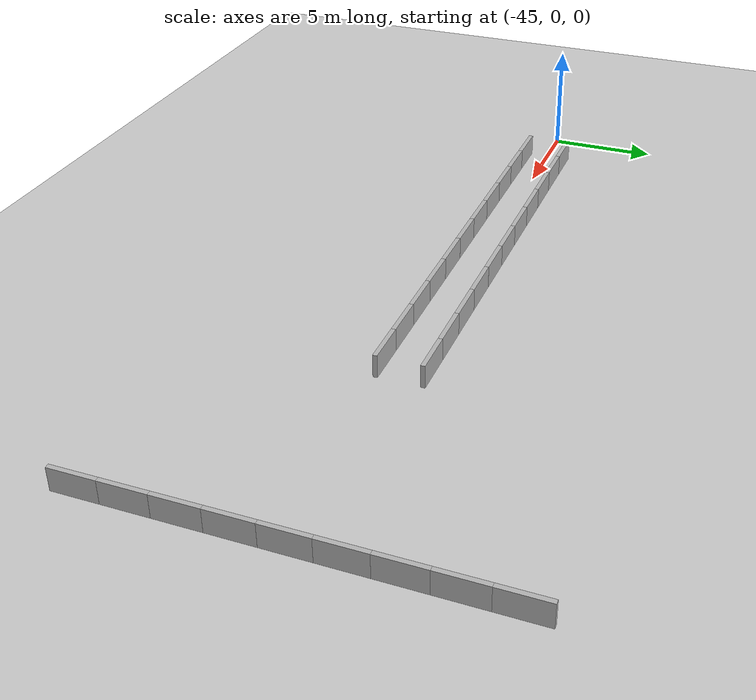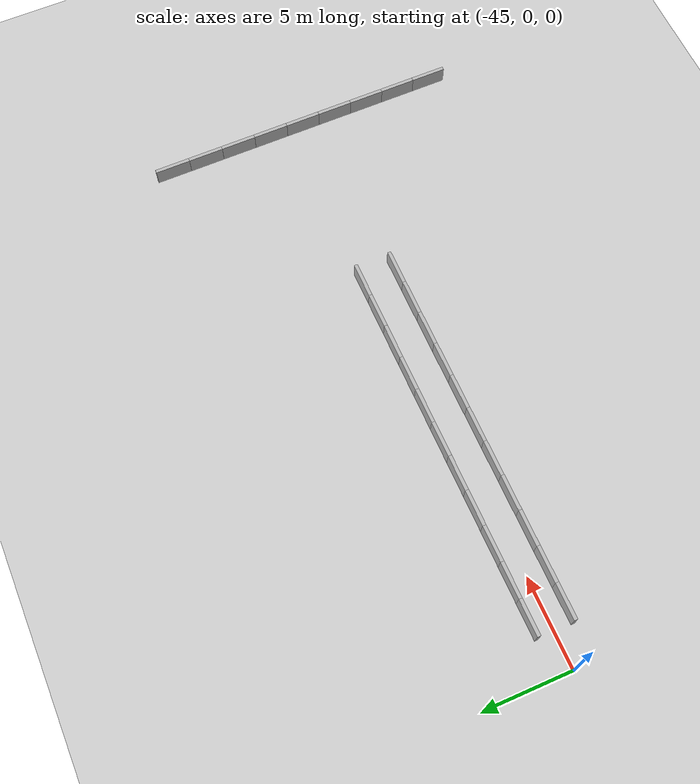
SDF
<sdf version="1.6">
 <world name="default">
  <model name="ground_plane">
   <static>1</static>
   <link name="link">
    <collision name="collision">
     <geometry><plane><normal>0 0 1</normal><size>100 100</size></plane></geometry>
     <surface>
      <contact><collide_bitmask>65535</collide_bitmask></contact>
      <friction><ode><mu>100</mu><mu2>50</mu2></ode></friction>
     </surface>
    </collision>
    <visual name="visual">
     <cast_shadows>0</cast_shadows>
     <geometry><plane><normal>0 0 1</normal><size>100 100</size></plane></geometry>
     <material>
      <script><uri>file://media/materials/scripts/gazebo.material</uri><name>Gazebo/Grey</name></script>
     </material>
    </visual>
   </link>
  </model>
  <model name="Color Tutorial Model_clone_4_clone_clone_3_clone_2_clone_1_clone_1_clone_1">
   <static>1</static>
   <link name="grating">
    <collision name="body_collision"><geometry><box><size>2 0.2 2</size></box></geometry></collision>
    <visual name="body_visual">
     <geometry><box><size>2 0.2 2</size></box></geometry>
     <material>
      <script>
       <uri>/home/neuro/.gazebo/models/grating_wall/materials/scripts/</uri>
       <uri>/home/neuro/.gazebo/models/grating_wall/materials/scripts/</uri>
       <name>RepeatedTexture</name>
      </script>
     </material>
    </visual>
   </link>
   <pose>-22 -1 0 0 0 -3.14159</pose>
  </model>
  <model name="Color Tutorial Model_clone_4_clone_clone_3_clone_2_clone_1_clone_1_clone_2">
   <static>1</static>
   <link name="grating">
    <collision name="body_collision"><geometry><box><size>2 0.2 2</size></box></geometry></collision>
    <visual name="body_visual">
     <geometry><box><size>2 0.2 2</size></box></geometry>
     <material>
      <script>
       <uri>/home/neuro/.gazebo/models/grating_wall/materials/scripts/</uri>
       <uri>/home/neuro/.gazebo/models/grating_wall/materials/scripts/</uri>
       <name>RepeatedTexture</name>
      </script>
     </material>
    </visual>
   </link>
   <pose>-22 1 0 0 0 -3.14159</pose>
  </model>
  <model name="Color Tutorial Model_clone_4_clone_clone_3_clone_2_clone_1_clone_1_clone_1_clone">
   <static>1</static>
   <link name="grating">
    <collision name="body_collision"><geometry><box><size>2 0.2 2</size></box></geometry></collision>
    <visual name="body_visual">
     <geometry><box><size>2 0.2 2</size></box></geometry>
     <material>
      <script>
       <uri>/home/neuro/.gazebo/models/grating_wall/materials/scripts/</uri>
       <uri>/home/neuro/.gazebo/models/grating_wall/materials/scripts/</uri>
       <name>RepeatedTexture</name>
      </script>
     </material>
    </visual>
   </link>
   <pose>-24 -1 0 0 0 -3.14159</pose>
  </model>
  <model name="Color Tutorial Model_clone_4_clone_clone_3_clone_2_clone_1_clone_1_clone_1_clone_0">
   <static>1</static>
   <link name="grating">
    <collision name="body_collision"><geometry><box><size>2 0.2 2</size></box></geometry></collision>
    <visual name="body_visual">
     <geometry><box><size>2 0.2 2</size></box></geometry>
     <material>
      <script>
       <uri>/home/neuro/.gazebo/models/grating_wall/materials/scripts/</uri>
       <uri>/home/neuro/.gazebo/models/grating_wall/materials/scripts/</uri>
       <name>RepeatedTexture</name>
      </script>
     </material>
    </visual>
   </link>
   <pose>-24 1 0 0 0 -3.14159</pose>
  </model>
  <model name="Color Tutorial Model_clone_4_clone_clone_3_clone_2_clone_1_clone_1_clone_1_clone_1">
   <static>1</static>
   <link name="grating">
    <collision name="body_collision"><geometry><box><size>2 0.2 2</size></box></geometry></collision>
    <visual name="body_visual">
     <geometry><box><size>2 0.2 2</size></box></geometry>
     <material>
      <script>
       <uri>/home/neuro/.gazebo/models/grating_wall/materials/scripts/</uri>
       <uri>/home/neuro/.gazebo/models/grating_wall/materials/scripts/</uri>
       <name>RepeatedTexture</name>
      </script>
     </material>
    </visual>
   </link>
   <pose>-26 -1 0 0 0 -3.14159</pose>
  </model>
  <model name="Color Tutorial Model_clone_4_clone_clone_3_clone_2_clone_1_clone_1_clone_1_clone_2">
   <static>1</static>
   <link name="grating">
    <collision name="body_collision"><geometry><box><size>2 0.2 2</size></box></geometry></collision>
    <visual name="body_visual">
     <geometry><box><size>2 0.2 2</size></box></geometry>
     <material>
      <script>
       <uri>/home/neuro/.gazebo/models/grating_wall/materials/scripts/</uri>
       <uri>/home/neuro/.gazebo/models/grating_wall/materials/scripts/</uri>
       <name>RepeatedTexture</name>
      </script>
     </material>
    </visual>
   </link>
   <pose>-26 1 0 0 0 -3.14159</pose>
  </model>
  <model name="Color Tutorial Model_clone_4_clone_clone_3_clone_2_clone_1_clone_1_clone_1_clone_1_clone">
   <static>1</static>
   <link name="grating">
    <collision name="body_collision"><geometry><box><size>2 0.2 2</size></box></geometry></collision>
    <visual name="body_visual">
     <geometry><box><size>2 0.2 2</size></box></geometry>
     <material>
      <script>
       <uri>/home/neuro/.gazebo/models/grating_wall/materials/scripts/</uri>
       <uri>/home/neuro/.gazebo/models/grating_wall/materials/scripts/</uri>
       <name>RepeatedTexture</name>
      </script>
     </material>
    </visual>
   </link>
   <pose>-28 -1 0 0 0 -3.14159</pose>
  </model>
  <model name="Color Tutorial Model_clone_4_clone_clone_3_clone_2_clone_1_clone_1_clone_1_clone_1_clone_0">
   <static>1</static>
   <link name="grating">
    <collision name="body_collision"><geometry><box><size>2 0.2 2</size></box></geometry></collision>
    <visual name="body_visual">
     <geometry><box><size>2 0.2 2</size></box></geometry>
     <material>
      <script>
       <uri>/home/neuro/.gazebo/models/grating_wall/materials/scripts/</uri>
       <uri>/home/neuro/.gazebo/models/grating_wall/materials/scripts/</uri>
       <name>RepeatedTexture</name>
      </script>
     </material>
    </visual>
   </link>
   <pose>-28 1 0 0 0 -3.14159</pose>
  </model>
  <model name="Color Tutorial Model_clone_4_clone_clone_3_clone_2_clone_1_clone_1_clone_1_clone_1_clone_1">
   <static>1</static>
   <link name="grating">
    <collision name="body_collision"><geometry><box><size>2 0.2 2</size></box></geometry></collision>
    <visual name="body_visual">
     <geometry><box><size>2 0.2 2</size></box></geometry>
     <material>
      <script>
       <uri>/home/neuro/.gazebo/models/grating_wall/materials/scripts/</uri>
       <uri>/home/neuro/.gazebo/models/grating_wall/materials/scripts/</uri>
       <name>RepeatedTexture</name>
      </script>
     </material>
    </visual>
   </link>
   <pose>-30 1 0 0 0 -3.14159</pose>
  </model>
  <model name="Color Tutorial Model_clone_4_clone_clone_3_clone_2_clone_1_clone_1_clone_1_clone_1_clone_2">
   <static>1</static>
   <link name="grating">
    <collision name="body_collision"><geometry><box><size>2 0.2 2</size></box></geometry></collision>
    <visual name="body_visual">
     <geometry><box><size>2 0.2 2</size></box></geometry>
     <material>
      <script>
       <uri>/home/neuro/.gazebo/models/grating_wall/materials/scripts/</uri>
       <uri>/home/neuro/.gazebo/models/grating_wall/materials/scripts/</uri>
       <name>RepeatedTexture</name>
      </script>
     </material>
    </visual>
   </link>
   <pose>-30 -1 0 0 0 -3.14159</pose>
  </model>
  <model name="Color Tutorial Model_clone_4_clone_clone_3_clone_2_clone_1_clone_1_clone_1_clone_1_clone_2_clone">
   <static>1</static>
   <link name="grating">
    <collision name="body_collision"><geometry><box><size>2 0.2 2</size></box></geometry></collision>
    <visual name="body_visual">
     <geometry><box><size>2 0.2 2</size></box></geometry>
     <material>
      <script>
       <uri>/home/neuro/.gazebo/models/grating_wall/materials/scripts/</uri>
       <uri>/home/neuro/.gazebo/models/grating_wall/materials/scripts/</uri>
       <name>RepeatedTexture</name>
      </script>
     </material>
    </visual>
   </link>
   <pose>-32 -1 0 0 0 -3.14159</pose>
  </model>
  <model name="Color Tutorial Model_clone_4_clone_clone_3_clone_2_clone_1_clone_1_clone_1_clone_1_clone_2_clone_0">
   <static>1</static>
   <link name="grating">
    <collision name="body_collision"><geometry><box><size>2 0.2 2</size></box></geometry></collision>
    <visual name="body_visual">
     <geometry><box><size>2 0.2 2</size></box></geometry>
     <material>
      <script>
       <uri>/home/neuro/.gazebo/models/grating_wall/materials/scripts/</uri>
       <uri>/home/neuro/.gazebo/models/grating_wall/materials/scripts/</uri>
       <name>RepeatedTexture</name>
      </script>
     </material>
    </visual>
   </link>
   <pose>-32 1 0 0 0 -3.14159</pose>
  </model>
  <model name="Color Tutorial Model_clone_4_clone_clone_3_clone_2_clone_1_clone_1_clone_1_clone_1_clone_2_clone_1">
   <static>1</static>
   <link name="grating">
    <collision name="body_collision"><geometry><box><size>2 0.2 2</size></box></geometry></collision>
    <visual name="body_visual">
     <geometry><box><size>2 0.2 2</size></box></geometry>
     <material>
      <script>
       <uri>/home/neuro/.gazebo/models/grating_wall/materials/scripts/</uri>
       <uri>/home/neuro/.gazebo/models/grating_wall/materials/scripts/</uri>
       <name>RepeatedTexture</name>
      </script>
     </material>
    </visual>
   </link>
   <pose>-34 -1 0 0 0 -3.14159</pose>
  </model>
  <model name="Color Tutorial Model_clone_4_clone_clone_3_clone_2_clone_1_clone_1_clone_1_clone_1_clone_2_clone_2">
   <static>1</static>
   <link name="grating">
    <collision name="body_collision"><geometry><box><size>2 0.2 2</size></box></geometry></collision>
    <visual name="body_visual">
     <geometry><box><size>2 0.2 2</size></box></geometry>
     <material>
      <script>
       <uri>/home/neuro/.gazebo/models/grating_wall/materials/scripts/</uri>
       <uri>/home/neuro/.gazebo/models/grating_wall/materials/scripts/</uri>
       <name>RepeatedTexture</name>
      </script>
     </material>
    </visual>
   </link>
   <pose>-34 1 0 0 0 -3.14159</pose>
  </model>
  <model name="Color Tutorial Model_clone_4_clone_clone_3_clone_2_clone_1_clone_1_clone_1_clone_1_clone_2_clone_1_clone">
   <static>1</static>
   <link name="grating">
    <collision name="body_collision"><geometry><box><size>2 0.2 2</size></box></geometry></collision>
    <visual name="body_visual">
     <geometry><box><size>2 0.2 2</size></box></geometry>
     <material>
      <script>
       <uri>/home/neuro/.gazebo/models/grating_wall/materials/scripts/</uri>
       <uri>/home/neuro/.gazebo/models/grating_wall/materials/scripts/</uri>
       <name>RepeatedTexture</name>
      </script>
     </material>
    </visual>
   </link>
   <pose>-36 -1 0 0 0 -3.14159</pose>
  </model>
  <model name="Color Tutorial Model_clone_4_clone_clone_3_clone_2_clone_1_clone_1_clone_1_clone_1_clone_2_clone_1_clone_0">
   <static>1</static>
   <link name="grating">
    <collision name="body_collision"><geometry><box><size>2 0.2 2</size></box></geometry></collision>
    <visual name="body_visual">
     <geometry><box><size>2 0.2 2</size></box></geometry>
     <material>
      <script>
       <uri>/home/neuro/.gazebo/models/grating_wall/materials/scripts/</uri>
       <uri>/home/neuro/.gazebo/models/grating_wall/materials/scripts/</uri>
       <name>RepeatedTexture</name>
      </script>
     </material>
    </visual>
   </link>
   <pose>-36 1 0 0 0 -3.14159</pose>
  </model>
  <model name="Color Tutorial Model_clone_4_clone_clone_3_clone_2_clone_1_clone_1_clone_1_clone_1_clone_2_clone_1_clone_1">
   <static>1</static>
   <link name="grating">
    <collision name="body_collision"><geometry><box><size>2 0.2 2</size></box></geometry></collision>
    <visual name="body_visual">
     <geometry><box><size>2 0.2 2</size></box></geometry>
     <material>
      <script>
       <uri>/home/neuro/.gazebo/models/grating_wall/materials/scripts/</uri>
       <uri>/home/neuro/.gazebo/models/grating_wall/materials/scripts/</uri>
       <name>RepeatedTexture</name>
      </script>
     </material>
    </visual>
   </link>
   <pose>-38 -1 0 0 0 -3.14159</pose>
  </model>
  <model name="Color Tutorial Model_clone_4_clone_clone_3_clone_2_clone_1_clone_1_clone_1_clone_1_clone_2_clone_1_clone_2">
   <static>1</static>
   <link name="grating">
    <collision name="body_collision"><geometry><box><size>2 0.2 2</size></box></geometry></collision>
    <visual name="body_visual">
     <geometry><box><size>2 0.2 2</size></box></geometry>
     <material>
      <script>
       <uri>/home/neuro/.gazebo/models/grating_wall/materials/scripts/</uri>
       <uri>/home/neuro/.gazebo/models/grating_wall/materials/scripts/</uri>
       <name>RepeatedTexture</name>
      </script>
     </material>
    </visual>
   </link>
   <pose>-38 1 0 0 0 -3.14159</pose>
  </model>
  <model name="Color Tutorial Model_clone_4_clone_clone_3_clone_2_clone_1_clone_1_clone_1_clone_1_clone_2_clone_1_clone_clone">
   <static>1</static>
   <link name="grating">
    <collision name="body_collision"><geometry><box><size>2 0.2 2</size></box></geometry></collision>
    <visual name="body_visual">
     <geometry><box><size>2 0.2 2</size></box></geometry>
     <material>
      <script>
       <uri>/home/neuro/.gazebo/models/grating_wall/materials/scripts/</uri>
       <uri>/home/neuro/.gazebo/models/grating_wall/materials/scripts/</uri>
       <name>RepeatedTexture</name>
      </script>
     </material>
    </visual>
   </link>
   <pose>-40 -1 0 0 0 -3.14159</pose>
  </model>
  <model name="Color Tutorial Model_clone_4_clone_clone_3_clone_2_clone_1_clone_1_clone_1_clone_1_clone_2_clone_1_clone_clone_0">
   <static>1</static>
   <link name="grating">
    <collision name="body_collision"><geometry><box><size>2 0.2 2</size></box></geometry></collision>
    <visual name="body_visual">
     <geometry><box><size>2 0.2 2</size></box></geometry>
     <material>
      <script>
       <uri>/home/neuro/.gazebo/models/grating_wall/materials/scripts/</uri>
       <uri>/home/neuro/.gazebo/models/grating_wall/materials/scripts/</uri>
       <name>RepeatedTexture</name>
      </script>
     </material>
    </visual>
   </link>
   <pose>-40 1 0 0 0 -3.14159</pose>
  </model>
  <model name="Color Tutorial Model_clone_4_clone_clone_3_clone_2_clone_1_clone_1_clone_1_clone_1_clone_2_clone_1_clone_clone_1">
   <static>1</static>
   <link name="grating">
    <collision name="body_collision"><geometry><box><size>2 0.2 2</size></box></geometry></collision>
    <visual name="body_visual">
     <geometry><box><size>2 0.2 2</size></box></geometry>
     <material>
      <script>
       <uri>/home/neuro/.gazebo/models/grating_wall/materials/scripts/</uri>
       <uri>/home/neuro/.gazebo/models/grating_wall/materials/scripts/</uri>
       <name>RepeatedTexture</name>
      </script>
     </material>
    </visual>
   </link>
   <pose>-42 -1 0 0 0 -3.14159</pose>
  </model>
  <model name="Color Tutorial Model_clone_4_clone_clone_3_clone_2_clone_1_clone_1_clone_1_clone_1_clone_2_clone_1_clone_clone_2">
   <static>1</static>
   <link name="grating">
    <collision name="body_collision"><geometry><box><size>2 0.2 2</size></box></geometry></collision>
    <visual name="body_visual">
     <geometry><box><size>2 0.2 2</size></box></geometry>
     <material>
      <script>
       <uri>/home/neuro/.gazebo/models/grating_wall/materials/scripts/</uri>
       <uri>/home/neuro/.gazebo/models/grating_wall/materials/scripts/</uri>
       <name>RepeatedTexture</name>
      </script>
     </material>
    </visual>
   </link>
   <pose>-42 1 0 0 0 -3.14159</pose>
  </model>
  <model name="Color Tutorial Model_clone_4_clone_clone_clone_0_clone">
   <static>1</static>
   <link name="grating">
    <collision name="body_collision"><geometry><box><size>2 0.2 2</size></box></geometry></collision>
    <visual name="body_visual">
     <geometry><box><size>2 0.2 2</size></box></geometry>
     <material>
      <script>
       <uri>/home/neuro/.gazebo/models/grating_wall/materials/scripts/</uri>
       <uri>/home/neuro/.gazebo/models/grating_wall/materials/scripts/</uri>
       <name>RepeatedTexture</name>
      </script>
     </material>
    </visual>
   </link>
   <pose>-11 -4 0 0 -0 1.5708</pose>
  </model>
  <model name="Color Tutorial Model_clone_4_clone_clone_clone_0_clone_0">
   <static>1</static>
   <link name="grating">
    <collision name="body_collision"><geometry><box><size>2 0.2 2</size></box></geometry></collision>
    <visual name="body_visual">
     <geometry><box><size>2 0.2 2</size></box></geometry>
     <material>
      <script>
       <uri>/home/neuro/.gazebo/models/grating_wall/materials/scripts/</uri>
       <uri>/home/neuro/.gazebo/models/grating_wall/materials/scripts/</uri>
       <name>RepeatedTexture</name>
      </script>
     </material>
    </visual>
   </link>
   <pose>-11 -2 0 0 -0 1.5708</pose>
  </model>
  <model name="Color Tutorial Model_clone_4_clone_clone_clone_0_clone_1">
   <static>1</static>
   <link name="grating">
    <collision name="body_collision"><geometry><box><size>2 0.2 2</size></box></geometry></collision>
    <visual name="body_visual">
     <geometry><box><size>2 0.2 2</size></box></geometry>
     <material>
      <script>
       <uri>/home/neuro/.gazebo/models/grating_wall/materials/scripts/</uri>
       <uri>/home/neuro/.gazebo/models/grating_wall/materials/scripts/</uri>
       <name>RepeatedTexture</name>
      </script>
     </material>
    </visual>
   </link>
   <pose>-11 0 0 0 -0 1.5708</pose>
  </model>
  <model name="Color Tutorial Model_clone_4_clone_clone_clone_0_clone_2">
   <static>1</static>
   <link name="grating">
    <collision name="body_collision"><geometry><box><size>2 0.2 2</size></box></geometry></collision>
    <visual name="body_visual">
     <geometry><box><size>2 0.2 2</size></box></geometry>
     <material>
      <script>
       <uri>/home/neuro/.gazebo/models/grating_wall/materials/scripts/</uri>
       <uri>/home/neuro/.gazebo/models/grating_wall/materials/scripts/</uri>
       <name>RepeatedTexture</name>
      </script>
     </material>
    </visual>
   </link>
   <pose>-11 2 0 0 -0 1.5708</pose>
  </model>
  <model name="Color Tutorial Model_clone_4_clone_clone_clone_0_clone_3">
   <static>1</static>
   <link name="grating">
    <collision name="body_collision"><geometry><box><size>2 0.2 2</size></box></geometry></collision>
    <visual name="body_visual">
     <geometry><box><size>2 0.2 2</size></box></geometry>
     <material>
      <script>
       <uri>/home/neuro/.gazebo/models/grating_wall/materials/scripts/</uri>
       <uri>/home/neuro/.gazebo/models/grating_wall/materials/scripts/</uri>
       <name>RepeatedTexture</name>
      </script>
     </material>
    </visual>
   </link>
   <pose>-11 4 0 0 -0 1.5708</pose>
  </model>
  <model name="Color Tutorial Model_clone_4_clone_clone_clone_0_clone_3_clone">
   <static>1</static>
   <link name="grating">
    <collision name="body_collision"><geometry><box><size>2 0.2 2</size></box></geometry></collision>
    <visual name="body_visual">
     <geometry><box><size>2 0.2 2</size></box></geometry>
     <material>
      <script>
       <uri>/home/neuro/.gazebo/models/grating_wall/materials/scripts/</uri>
       <uri>/home/neuro/.gazebo/models/grating_wall/materials/scripts/</uri>
       <name>RepeatedTexture</name>
      </script>
     </material>
    </visual>
   </link>
   <pose>-11 6 0 0 -0 1.5708</pose>
  </model>
  <model name="Color Tutorial Model_clone_4_clone_clone_clone_0_clone_3_clone_0">
   <static>1</static>
   <link name="grating">
    <collision name="body_collision"><geometry><box><size>2 0.2 2</size></box></geometry></collision>
    <visual name="body_visual">
     <geometry><box><size>2 0.2 2</size></box></geometry>
     <material>
      <script>
       <uri>/home/neuro/.gazebo/models/grating_wall/materials/scripts/</uri>
       <uri>/home/neuro/.gazebo/models/grating_wall/materials/scripts/</uri>
       <name>RepeatedTexture</name>
      </script>
     </material>
    </visual>
   </link>
   <pose>-11 8 0 0 -0 1.5708</pose>
  </model>
  <model name="Color Tutorial Model_clone_4_clone_clone_clone_0_clone_clone">
   <static>1</static>
   <link name="grating">
    <collision name="body_collision"><geometry><box><size>2 0.2 2</size></box></geometry></collision>
    <visual name="body_visual">
     <geometry><box><size>2 0.2 2</size></box></geometry>
     <material>
      <script>
       <uri>/home/neuro/.gazebo/models/grating_wall/materials/scripts/</uri>
       <uri>/home/neuro/.gazebo/models/grating_wall/materials/scripts/</uri>
       <name>RepeatedTexture</name>
      </script>
     </material>
    </visual>
   </link>
   <pose>-11 -6 0 0 -0 1.5708</pose>
  </model>
  <model name="Color Tutorial Model_clone_4_clone_clone_clone_0_clone_clone_0">
   <static>1</static>
   <link name="grating">
    <collision name="body_collision"><geometry><box><size>2 0.2 2</size></box></geometry></collision>
    <visual name="body_visual">
     <geometry><box><size>2 0.2 2</size></box></geometry>
     <material>
      <script>
       <uri>/home/neuro/.gazebo/models/grating_wall/materials/scripts/</uri>
       <uri>/home/neuro/.gazebo/models/grating_wall/materials/scripts/</uri>
       <name>RepeatedTexture</name>
      </script>
     </material>
    </visual>
   </link>
   <pose>-11 -8 0 0 -0 1.5708</pose>
  </model>
 </world>
</sdf>
